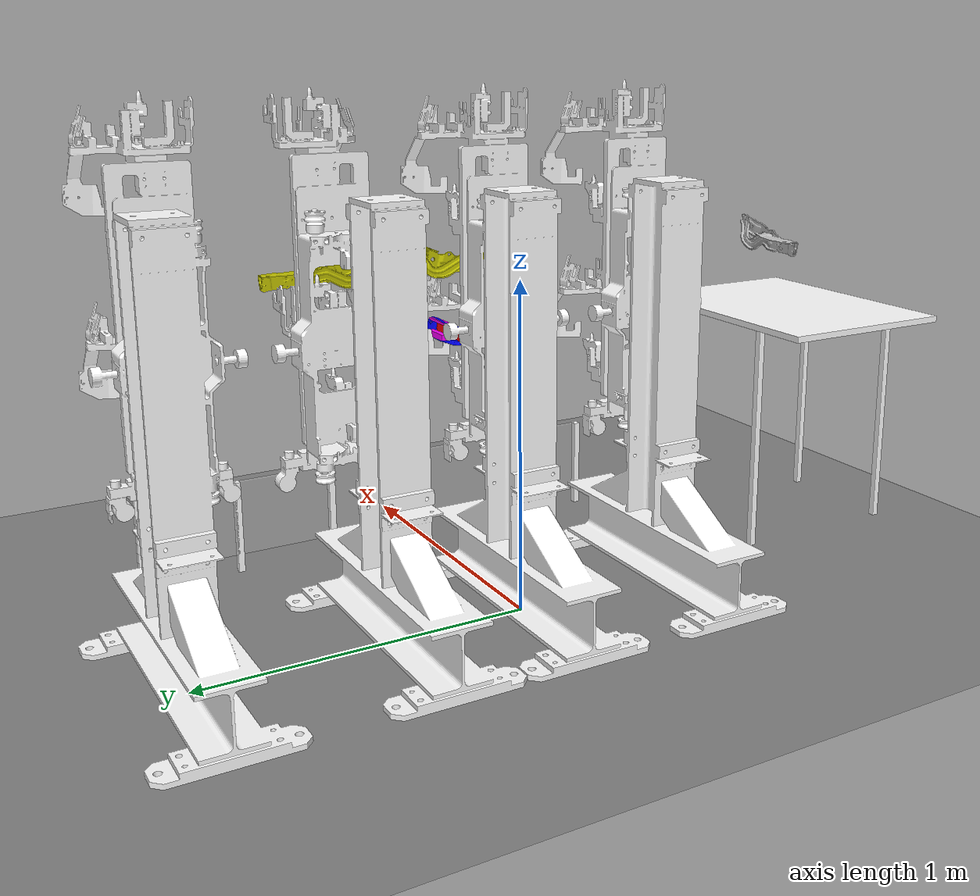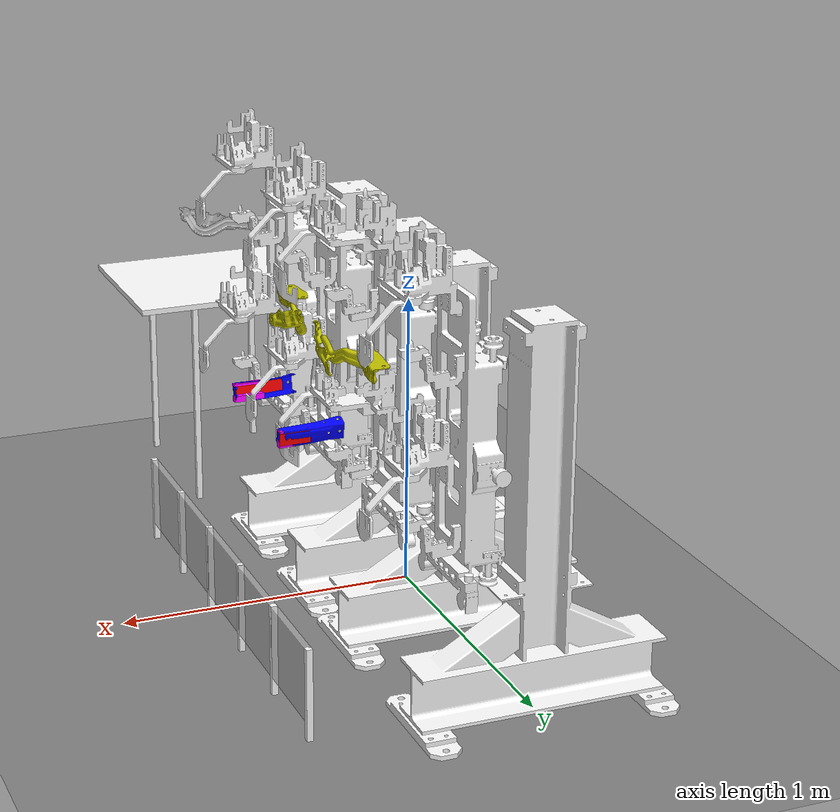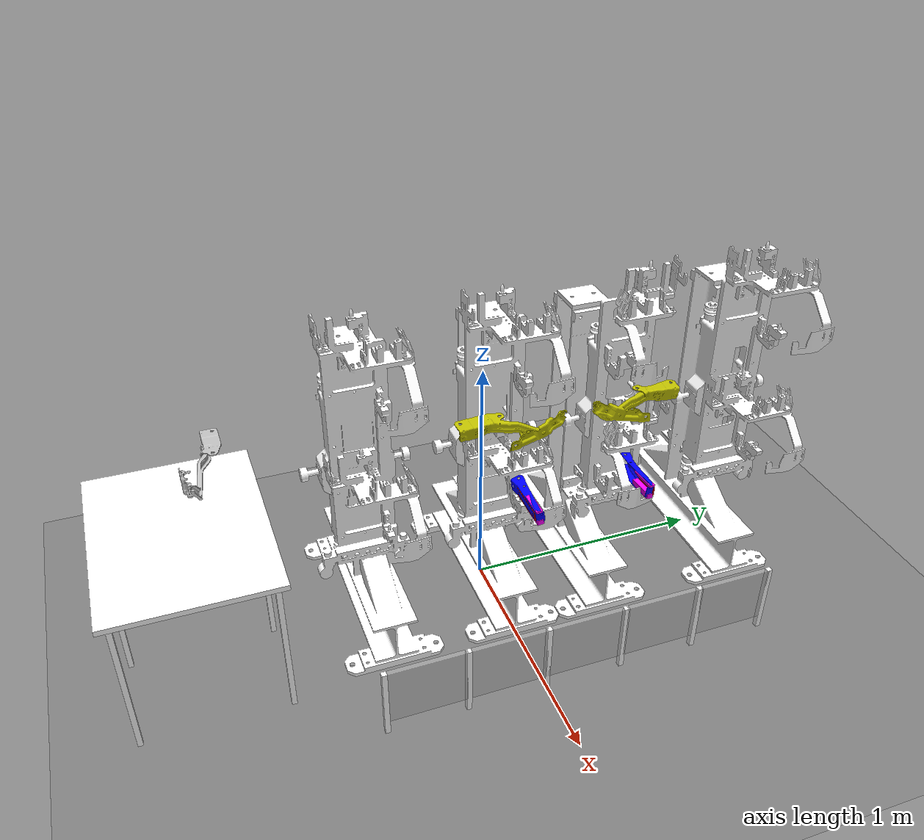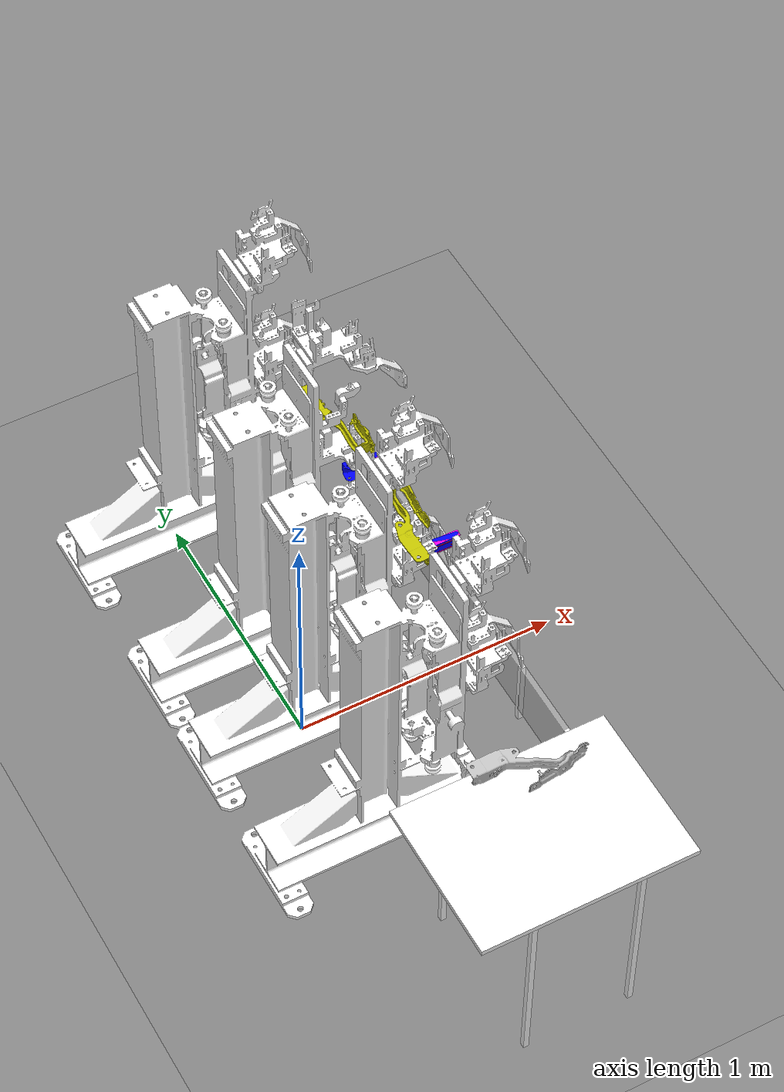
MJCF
<mujoco model="vccd_write">
    <compiler meshdir="../../meshes/wing" angle="radian" eulerseq="zyx"/>
    <asset>
        <texture type="2d" name="groundplane" builtin="checker" mark="edge" rgb1="0.5 0.5 0.5" rgb2="0.5 0.5 0.5"
                markrgb="0.3 0.3 0.3" width="300" height="300"/>
        <material name="groundplane" texture="groundplane" texuniform="true" texrepeat="2 2"/>
        <material name="red_light" rgba="1.0 0.0 0.0 1.0" emission="1.0" />
        <material name="green_light" rgba="0.0 1.0 0.0 1.0" emission="1.0"/>
        <material name="yellow_light" rgba="1.0 1.0 0.0 1.0" emission="1.0" />
        <mesh name="wing_board" file="yiziban.stl" scale="0.001 0.001 0.001"/>
        <mesh name="wing_board_mirror" file="yiziban_mirror.stl" scale="0.001 0.001 0.001"/>
        <mesh name="rack" file="jiazi.stl" scale="0.001 0.001 0.001"/>
        <mesh name="rack_mirror" file="zhijia_mirror.stl" scale="0.001 0.001 0.001"/>
        <mesh name="cy" file="cy.stl" scale="0.001 0.001 0.001"/>
        <mesh name="xiaode" file="xiaode.stl" scale="0.001 0.001 0.001"/>
        <mesh name="xiaode_mirror" file="xiaode_mirror.stl" scale="0.001 0.001 0.001"/>
        <mesh name="cy_bottom" file="cy_bottom.stl" scale="0.001 0.001 0.001"/>

    </asset>
    <visual>
        <headlight diffuse="1.2 1.2 1.2" ambient="0.3 0.3 0.3" specular="0 0 0"/>
        <rgba haze="0.15 0.25 0.35 1"/>
        <global azimuth="90" elevation="-20"/>
        <quality shadowsize="8192"/>
    </visual>
    <worldbody>
        <light pos="2.058333333 1.275 3" dir="0 0 -1" directional="false"   diffuse=".2 .2 .2"/>
        <light pos="-2.058333333 1.275 3" dir="0 0 -1" directional="false"  diffuse=".2 .2 .2"/>
        <light pos="2.058333333 -1.275 3" dir="0 0 -1" directional="false"  diffuse=".2 .2 .2"/>
        <light pos="-2.058333333 -1.275 3" dir="0 0 -1" directional="false" diffuse=".2 .2 .2"/>
        <light pos="-.225 1.5 3" dir="0 0 -1" directional="false"           diffuse=".2 .2 .2"/>
        <geom name="ground" pos="0 0 0" size="1.98 1.79 0.005" type="plane" material="groundplane" condim="1"/>

        <body name="wing_board" pos="0.25 -1.1 1" euler="0 0 0">
            <joint type="free"/>
            <geom type="mesh" mesh="wing_board" rgba="0.75 0.75 0.75 1"/>

        </body>

        <body name="wing_board_test" pos="0.397 -0.035 1" euler="1.63 0 0.05">
            <joint type="free"/>
            <geom type="mesh" mesh="wing_board" contype="0" conaffinity="0" rgba="0.75 0.75 0 1"/>
            <geom type="box" pos="-0.02 -0.055 -0.0347" size="0.022 0.0059 0.017" rgba="1 0 0 0" friction="0.5 0.0 0.0"/>
            <geom type="box" pos="-0.16 0.04 -0.0245" size="0.022 0.0059 0.01" euler="0 -0.07 0" rgba="1 0 0 0" friction="0.5 0.0 0.0"/>
            <geom type="box" pos="0.09 -0.0555 -0.009" size="0.022 0.005 0.017" euler="0 -0.32 0" rgba="1 0 0 0" friction="0.5 0.0 0.0"/>
            <geom type="box" pos="0.03 -0.052 -0.033" size="0.022 0.005 0.009" euler="0 -0.22 0" rgba="1 0 0 0" friction="0.5 0.0 0.0"/>
            <geom type="box" pos="0.105 -0.013 -0.041" size="0.022 0.006 0.01" euler="-0.05 -0.32 0" rgba="1 0 0 0" friction="0.5 0.0 0.0"/>
            <geom type="box" pos="-0.17 0.065 0.013" size="0.022 0.025 0.0017" euler="0 -0.05 0" rgba="1 0 0 0" friction="0.5 0.0 0.0"/>
            <geom type="cylinder" pos="-0.033 0.065 0.02" size="0.001 0.002" rgba="1 0 1 0" />
            <geom type="cylinder" pos="-0.039 0.05758 0.02" size="0.001 0.002" rgba="1 0 1 0"/>
            <geom type="cylinder" pos="-0.028 0.064 0.02" size="0.001 0.002" rgba="1 0 1 0" />
            <geom type="cylinder" pos="-0.037 0.0525 0.02" size="0.001 0.002" rgba="1 0 1 0" />
            <geom type="cylinder" pos="-0.037 0.063 0.02" size="0.001 0.002" rgba="1 0 1 0" />
            <geom type="cylinder" pos="-0.038 0.0614 0.02" size="0.001 0.002" rgba="1 0 1 0"/>
            <geom type="cylinder" pos="-0.0388 0.05958 0.02" size="0.001 0.002" rgba="1 0 1 0" />
            <geom type="cylinder" pos="-0.0388 0.0555 0.02" size="0.001 0.002" rgba="1 0 1 0"/>
            <geom type="cylinder" pos="-0.038 0.0537 0.02" size="0.001 0.002" rgba="1 0 1 0"/>
            <geom type="cylinder" pos="-0.0355 0.0515 0.02" size="0.001 0.002" rgba="1 0 1 0"/>
            <geom type="cylinder" pos="-0.0338 0.0508 0.02" size="0.001 0.002" rgba="1 0 1 0"/>
            <geom type="cylinder" pos="-0.0317 0.0503 0.02" size="0.001 0.002" rgba="1 0 1 0" />
            <geom type="cylinder" pos="-0.0297 0.05055 0.02" size="0.001 0.002" rgba="1 0 1 0"/>
            <geom type="cylinder" pos="-0.0278 0.0512 0.02" size="0.001 0.002" rgba="1 0 1 0"/>
            <geom type="cylinder" pos="-0.0262 0.0526 0.02" size="0.001 0.002" rgba="1 0 1 0"/>
            <geom type="cylinder" pos="-0.0252 0.05385 0.02" size="0.001 0.002" rgba="1 0 1 0"/>
            <geom type="cylinder" pos="-0.0248 0.0558 0.02" size="0.001 0.002" rgba="1 0 1 0"/>
            <geom type="cylinder" pos="-0.0243 0.057 0.02" size="0.001 0.002" rgba="1 0 1 0"/>
            <geom type="cylinder" pos="-0.0245 0.0585 0.02" size="0.001 0.002" rgba="1 0 1 0"/>
            <geom type="cylinder" pos="-0.0247 0.06 0.02" size="0.001 0.002" rgba="1 0 1 0"/>
            <geom type="cylinder" pos="-0.0255 0.0615 0.02" size="0.001 0.002" rgba="1 0 1 0"/>
            <geom type="cylinder" pos="-0.0267 0.0628 0.02" size="0.001 0.002" rgba="1 0 1 0"/>
            <geom type="cylinder" pos="-0.0298 0.0648 0.02" size="0.001 0.002" rgba="1 0 1 0"/>
            <geom type="cylinder" pos="-0.031 0.065 0.02" size="0.001 0.002" rgba="1 0 1 0"/>
            <geom type="cylinder" pos="-0.035 0.0642 0.02" size="0.001 0.002" rgba="1 0 1 0"/>
        </body>

        <body name="wing_board_test_mirror" pos="0.394 0.435 1" euler="1.48 0 0.01">
            <joint type="free"/>
            <geom type="mesh" mesh="wing_board_mirror" contype="0" conaffinity="0" rgba="0.75 0.75 0 1"/>
            <geom type="box" pos="0.02 -0.0535 -0.034" size="0.022 0.0059 0.017" euler="0 0.07 0" rgba="1 0 0 0" friction="0.5 0.0 0.0"/>
            <geom type="box" pos="0.16 0.042 -0.0245" size="0.022 0.0059 0.01" euler="0 0.07 0" rgba="1 0 0 0" friction="0.5 0.0 0.0"/>
            <geom type="box" pos="-0.08 -0.055 -0.008" size="0.022 0.005 0.017" euler="0 0.32 0" rgba="1 0 0 0" friction="0.5 0.0 0.0"/>
            <geom type="box" pos="-0.03 -0.05 -0.033" size="0.022 0.005 0.009" euler="0 0.22 0" rgba="1 0 0 0" friction="0.5 0.0 0.0"/>
            <geom type="box" pos="-0.105 -0.013 -0.041" size="0.022 0.006 0.01" euler="0.05 0.32 0" rgba="1 0 0 0" friction="0.5 0.0 0.0"/>
            <geom type="box" pos="0.16 0.065 0.013" size="0.022 0.025 0.0017" euler="0 0.05 0" rgba="1 0 0 0" friction="0.5 0.0 0.0"/>
            <body name="hole" pos="0.0636 0 0.002">
                <geom type="cylinder" pos="-0.033 0.065 0.02" size="0.001 0.002" rgba="1 0 1 0" />
                <geom type="cylinder" pos="-0.039 0.05758 0.02" size="0.001 0.002" rgba="1 0 1 0"/>
                <geom type="cylinder" pos="-0.028 0.064 0.02" size="0.001 0.002" rgba="1 0 1 0" />
                <geom type="cylinder" pos="-0.037 0.0525 0.02" size="0.001 0.002" rgba="1 0 1 0" />
                <geom type="cylinder" pos="-0.037 0.063 0.02" size="0.001 0.002" rgba="1 0 1 0" />
                <geom type="cylinder" pos="-0.038 0.0614 0.02" size="0.001 0.002" rgba="1 0 1 0"/>
                <geom type="cylinder" pos="-0.0388 0.05958 0.02" size="0.001 0.002" rgba="1 0 1 0" />
                <geom type="cylinder" pos="-0.0388 0.0555 0.02" size="0.001 0.002" rgba="1 0 1 0"/>
                <geom type="cylinder" pos="-0.038 0.0537 0.02" size="0.001 0.002" rgba="1 0 1 0"/>
                <geom type="cylinder" pos="-0.0355 0.0515 0.02" size="0.001 0.002" rgba="1 0 1 0"/>
                <geom type="cylinder" pos="-0.0338 0.0508 0.02" size="0.001 0.002" rgba="1 0 1 0"/>
                <geom type="cylinder" pos="-0.0317 0.0503 0.02" size="0.001 0.002" rgba="1 0 1 0" />
                <geom type="cylinder" pos="-0.0297 0.05055 0.02" size="0.001 0.002" rgba="1 0 1 0"/>
                <geom type="cylinder" pos="-0.0278 0.0512 0.02" size="0.001 0.002" rgba="1 0 1 0"/>
                <geom type="cylinder" pos="-0.0262 0.0526 0.02" size="0.001 0.002" rgba="1 0 1 0"/>
                <geom type="cylinder" pos="-0.0252 0.05385 0.02" size="0.001 0.002" rgba="1 0 1 0"/>
                <geom type="cylinder" pos="-0.0248 0.0558 0.02" size="0.001 0.002" rgba="1 0 1 0"/>
                <geom type="cylinder" pos="-0.0243 0.057 0.02" size="0.001 0.002" rgba="1 0 1 0"/>
                <geom type="cylinder" pos="-0.0245 0.0585 0.02" size="0.001 0.002" rgba="1 0 1 0"/>
                <geom type="cylinder" pos="-0.0247 0.06 0.02" size="0.001 0.002" rgba="1 0 1 0"/>
                <geom type="cylinder" pos="-0.0255 0.0615 0.02" size="0.001 0.002" rgba="1 0 1 0"/>
                <geom type="cylinder" pos="-0.0267 0.0628 0.02" size="0.001 0.002" rgba="1 0 1 0"/>
                <geom type="cylinder" pos="-0.0298 0.0648 0.02" size="0.001 0.002" rgba="1 0 1 0"/>
                <geom type="cylinder" pos="-0.031 0.065 0.02" size="0.001 0.002" rgba="1 0 1 0"/>
                <geom type="cylinder" pos="-0.035 0.0642 0.02" size="0.001 0.002" rgba="1 0 1 0"/>
            </body>
        </body>

        <body name="wing_rack" pos="0 0 0" euler="1.57 0 1.57">
            <geom type="mesh" mesh="rack" contype="0" conaffinity="0" pos="-0.5 0 0"  rgba="1 1 1 1"/>
            <geom type="mesh" mesh="rack" contype="0" conaffinity="0" pos="0 0 0" rgba="1 1 1 1"/>
            <geom type="mesh" mesh="rack" contype="0" conaffinity="0" pos="1 0 0"  rgba="1 1 1 1"/>
            <geom type="box" pos="-0.057 0.925 0.46" size="0.003 0.02 0.0022" rgba="1 0 1 0" friction="0.5 0.0 0.0"/>
            <geom type="box" pos="-0.057 0.925 0.442" size="0.003 0.02 0.0022" rgba="1 0 1 0" friction="0.5 0.0 0.0"/>
            <geom type="box" pos="-0.059 0.907 0.45" size="0.01 0.002 0.018" rgba="1 0 1 0" friction="0.5 0.0 0.0"/>
            <geom type="box" pos="-0.19 0.93 0.36" size="0.01 0.002 0.018" rgba="1 0 1 0" friction="0.5 0.0 0.0"/>
            <geom type="box" pos="-0.185 0.95 0.338" size="0.003 0.02 0.0022" rgba="1 0 1 0" friction="0.5 0.0 0.0"/>
            <geom type="box" pos="-0.185 0.94 0.375" size="0.003 0.01 0.0022" rgba="1 0 1 0" friction="0.5 0.0 0.0"/>
            <geom type="box" pos="0.057 0.9275 0.442" size="0.022 0.008 0.001" euler="0.21 0 1.57" rgba="1 0 1 0" friction="0.5 0.0 0.0"/>
            <geom type="box" pos="-0.02 0.913 0.442" size="0.022 0.008 0.001" euler="0.19 0 1.57" rgba="1 0 1 0" friction="0.5 0.0 0.0"/>
            <geom type="box" pos="0.057 0.898 0.4005" size="0.022 0.008 0.001" euler="0.21 0 1.57" rgba="1 0 1 0" friction="0.5 0.0 0.0"/>
            <geom type="box" pos="0.064 0.943 0.452" size="0.003 0.025 0.0022" euler="0.32 0 0.02" rgba="1 0 1 0" friction="0.5 0.0 0.0"/>
            <geom type="box" pos="0.064 0.935 0.433" size="0.003 0.01 0.0022" euler="0.32 0 0.02" rgba="1 0 1 0" friction="0.5 0.0 0.0"/>
            <geom type="box" pos="0.064 0.917 0.41" size="0.003 0.025 0.0022" euler="0.32 0 0.02" rgba="1 0 1 0" friction="0.5 0.0 0.0"/>
            <geom type="box" pos="0.064 0.917 0.391" size="0.003 0.025 0.0022" euler="0.32 0 0.02" rgba="1 0 1 0" friction="0.5 0.0 0.0"/>
            <geom type="box" pos="-0.19 0.975 0.323" size="0.01 0.002 0.018" rgba="1 0 1 0" friction="0.5 0.0 0.0"/>
            <geom type="mesh" mesh="cy" pos="-0.077 0.977 0.346" euler="0 0 -1.57" rgba="0 0 1 0"/>
            <geom type="box" pos="-0.014 0.684 0.555" euler="0.06 0 0" size="0.012 0.001 0.05" rgba="1 1 1 0" friction="0.5 0.0 0.0"/>
            <geom type="box" pos="0 0.684 0.555" euler="1.57 0 0" size="0.01 0.001 0.008" rgba="1 1 1 0" friction="0.5 0.0 0.0"/>
            <geom type="box" pos="-0.029 0.693 0.555" euler="1.6 0 0" size="0.01 0.001 0.008" rgba="1 1 1 0" friction="0.5 0.0 0.0"/>
            <geom type="box" pos="-0.005 0.6822 0.405" euler="0 0 0.025" size="0.012 0.001 0.03" rgba="1 1 1 0" friction="0.5 0.0 0.0"/>
            <geom type="mesh" mesh="cy_bottom" pos="-0.01 0.682 0.413" euler="0 0 -1.57" rgba="0 0 1 0"/>

            <geom type="mesh" mesh="rack_mirror" contype="0" conaffinity="0" pos="0.4 0 0"  rgba="1 1 1 1"/>
            <body name="rack_collision_mirror" pos="0.516 0 0">
                <geom type="box" pos="-0.057 0.925 0.46" size="0.003 0.02 0.0022" rgba="1 0 1 0" friction="0.5 0.0 0.0"/>
                <geom type="box" pos="-0.057 0.925 0.442" size="0.003 0.02 0.0022" rgba="1 0 1 0" friction="0.5 0.0 0.0"/>
                <geom type="box" pos="-0.059 0.907 0.45" size="0.01 0.002 0.018" rgba="1 0 1 0" friction="0.5 0.0 0.0"/>
                <geom type="box" pos="0.07 0.93 0.36" size="0.01 0.002 0.018" rgba="1 0 1 0" friction="0.5 0.0 0.0"/>
                <geom type="box" pos="0.07 0.95 0.338" size="0.003 0.02 0.0022" rgba="1 0 1 0" friction="0.5 0.0 0.0"/>
                <geom type="box" pos="0.07 0.94 0.375" size="0.003 0.01 0.0022" rgba="1 0 1 0" friction="0.5 0.0 0.0"/>
                <geom type="box" pos="-0.175 0.9275 0.442" size="0.022 0.008 0.001" euler="-0.21 0 -1.57" rgba="1 0 1 0" friction="0.5 0.0 0.0"/>
                <geom type="box" pos="-0.1 0.913 0.442" size="0.022 0.008 0.001" euler="-0.19 0 -1.57" rgba="1 0 1 0" friction="0.5 0.0 0.0"/>
                <geom type="box" pos="-0.185 0.899 0.4005" size="0.022 0.008 0.001" euler="-0.21 0 -1.57" rgba="1 0 1 0" friction="0.5 0.0 0.0"/>
                <geom type="box" pos="-0.175 0.943 0.452" size="0.003 0.025 0.0022" euler="-0.32 0 0" rgba="1 0 1 0" friction="0.5 0.0 0.0"/>
                <geom type="box" pos="-0.175 0.935 0.433" size="0.003 0.01 0.0022" euler="-0.32 0 0.02" rgba="1 0 1 0" friction="0.5 0.0 0.0"/>
                <geom type="box" pos="-0.185 0.917 0.41" size="0.003 0.025 0.0022" euler="-0.32 0 -0.02" rgba="1 0 1 0" friction="0.5 0.0 0.0"/>
                <geom type="box" pos="-0.185 0.917 0.391" size="0.003 0.025 0.0022" euler="-0.32 0 -0.02" rgba="1 0 1 0" friction="0.5 0.0 0.0"/>
                <geom type="box" pos="0.07 0.975 0.323" size="0.01 0.002 0.018" rgba="1 0 1 0" friction="0.5 0.0 0.0"/>
                <geom type="mesh" mesh="cy" pos="-0.052 0.977 0.346" euler="0 0 -1.57" rgba="0 0 1 0"/>
                <geom type="box" pos="-0.1 0.683 0.555" euler="-0.06 0 0" size="0.012 0.001 0.05" rgba="1 1 0 0" friction="0.5 0.0 0.0"/>
                <geom type="box" pos="-0.084 0.69 0.555" euler="1.5 0 0" size="0.01 0.001 0.008" rgba="1 1 0 0" friction="0.5 0.0 0.0"/>
                <geom type="box" pos="-0.115 0.693 0.555" euler="1.6 0 0" size="0.01 0.001 0.008" rgba="1 1 0 0" friction="0.5 0.0 0.0"/>
                <geom type="box" pos="-0.112 0.6822 0.405" euler="0 0 0.025" size="0.012 0.001 0.03" rgba="1 1 0 0" friction="0.5 0.0 0.0"/>
                <geom type="mesh" mesh="cy_bottom" pos="-0.116 0.682 0.413" euler="0 0 -1.57" rgba="0 0 1 0"/>
            </body>
        </body>

        <body name="xiade" pos="0.5315 -0.02 0.75" euler="1.57 -0.13 1.57">
            <joint type="free"/>
            <geom type="mesh" mesh="xiaode" pos="0 0 0" contype="0" conaffinity="0" euler="0 0 0" rgba="0 0 1 1"/>
            <geom type="box" pos="0.005 -0.023 0.02" size="0.012 0.01 0.05" rgba="1 0 1 1" friction="0.5 0.0 0.0"/>
            <geom type="box" pos="0.005 0.023 0.02" size="0.012 0.004 0.05" rgba="1 0 1 1" friction="0.5 0.0 0.0"/>
            <geom type="cylinder" pos="0.0115 -0.023 -0.1198" euler="0 0 1.57" size="0.001 0.002" rgba="1 0 1 0" />
            <geom type="cylinder" pos="0.01 -0.023 -0.1207" euler="0 0 1.57" size="0.001 0.002" rgba="1 0 1 0" />
            <geom type="cylinder" pos="0.0088 -0.023 -0.1219" euler="0 0 1.57" size="0.001 0.002" rgba="1 0 1 0" />
            <geom type="cylinder" pos="0.0078 -0.023 -0.1235" euler="0 0 1.57" size="0.001 0.002" rgba="1 0 1 0" />
            <geom type="cylinder" pos="0.0074 -0.023 -0.1255" euler="0 0 1.57" size="0.001 0.002" rgba="1 0 1 0" />
            <geom type="cylinder" pos="0.0078 -0.023 -0.1275" euler="0 0 1.57" size="0.001 0.002" rgba="1 0 1 0" />
            <geom type="cylinder" pos="0.0088 -0.023 -0.1294" euler="0 0 1.57" size="0.001 0.002" rgba="1 0 1 0" />
            <geom type="cylinder" pos="0.0102 -0.023 -0.131" euler="0 0 1.57" size="0.001 0.002" rgba="1 0 1 0" />
            <geom type="cylinder" pos="0.012 -0.023 -0.1318" euler="0 0 1.57" size="0.001 0.002" rgba="1 0 1 0" />
            <geom type="cylinder" pos="0.014 -0.023 -0.1321" euler="0 0 1.57" size="0.001 0.002" rgba="1 0 1 0" />
            <geom type="cylinder" pos="0.016 -0.023 -0.1317" euler="0 0 1.57" size="0.001 0.002" rgba="1 0 1 0" />
            <geom type="cylinder" pos="0.0177 -0.023 -0.1308" euler="0 0 1.57" size="0.001 0.002" rgba="1 0 1 0" />
            <geom type="cylinder" pos="0.0191 -0.023 -0.1295" euler="0 0 1.57" size="0.001 0.002" rgba="1 0 1 0" />
            <geom type="cylinder" pos="0.0198 -0.023 -0.1279" euler="0 0 1.57" size="0.001 0.002" rgba="1 0 1 0" />
            <geom type="cylinder" pos="0.0202 -0.023 -0.126" euler="0 0 1.57" size="0.001 0.002" rgba="1 0 1 0" />
            <geom type="cylinder" pos="0.0198 -0.023 -0.124" euler="0 0 1.57" size="0.001 0.002" rgba="1 0 1 0" />
            <geom type="cylinder" pos="0.0188 -0.023 -0.122" euler="0 0 1.57" size="0.001 0.002" rgba="1 0 1 0" />
            <geom type="cylinder" pos="0.0173 -0.023 -0.1206" euler="0 0 1.57" size="0.001 0.002" rgba="1 0 1 0" />
            <geom type="cylinder" pos="0.0159 -0.023 -0.1198" euler="0 0 1.57" size="0.001 0.002" rgba="1 0 1 0" />
            <geom type="cylinder" pos="0.0145 -0.023 -0.1195" euler="0 0 1.57" size="0.001 0.002" rgba="1 0 1 0" />
            <geom type="cylinder" pos="0.013 -0.023 -0.1193" euler="0 0 1.57" size="0.001 0.002" rgba="1 0 1 0" />
            <geom type="box" pos="-0.0088 0 -0.02" size="0.0017 0.02 0.08" rgba="1 0 0 1" friction="0.5 0.0 0.0"/>
        </body>

        <body name="xiade_mirror" pos="0.5315 0.42 0.75" euler="1.57 0.1 1.57">
            <joint type="free"/>
            <geom type="mesh" mesh="xiaode_mirror" pos="0 0 0" contype="0" conaffinity="0" euler="0 0 0" rgba="0 0 1 1"/>
            <geom type="box" pos="-0.005 -0.0215 0.02" euler="0.05 0.05 0" size="0.0115 0.01 0.05" rgba="1 0 1 1" friction="0.5 0.0 0.0"/>
            <geom type="box" pos="-0.005 0.0215 0.02" euler="0.05 0.05 0" size="0.0115 0.004 0.05" rgba="1 0 1 1" friction="0.5 0.0 0.0"/>
            <body name="hole_xiaode" pos="-0.0275 -0.002 0">
                <geom type="cylinder" pos="0.0115 -0.023 -0.1198" euler="0 0 1.57" size="0.001 0.002" rgba="1 0 1 0" />
                <geom type="cylinder" pos="0.01 -0.023 -0.1207" euler="0 0 1.57" size="0.001 0.002" rgba="1 0 1 0" />
                <geom type="cylinder" pos="0.0088 -0.023 -0.1219" euler="0 0 1.57" size="0.001 0.002" rgba="1 0 1 0" />
                <geom type="cylinder" pos="0.0078 -0.023 -0.1235" euler="0 0 1.57" size="0.001 0.002" rgba="1 0 1 0" />
                <geom type="cylinder" pos="0.0074 -0.023 -0.1255" euler="0 0 1.57" size="0.001 0.002" rgba="1 0 1 0" />
                <geom type="cylinder" pos="0.0078 -0.023 -0.1275" euler="0 0 1.57" size="0.001 0.002" rgba="1 0 1 0" />
                <geom type="cylinder" pos="0.0088 -0.023 -0.1294" euler="0 0 1.57" size="0.001 0.002" rgba="1 0 1 0" />
                <geom type="cylinder" pos="0.0102 -0.023 -0.131" euler="0 0 1.57" size="0.001 0.002" rgba="1 0 1 0" />
                <geom type="cylinder" pos="0.012 -0.023 -0.1318" euler="0 0 1.57" size="0.001 0.002" rgba="1 0 1 0" />
                <geom type="cylinder" pos="0.014 -0.023 -0.1321" euler="0 0 1.57" size="0.001 0.002" rgba="1 0 1 0" />
                <geom type="cylinder" pos="0.016 -0.023 -0.1317" euler="0 0 1.57" size="0.001 0.002" rgba="1 0 1 0" />
                <geom type="cylinder" pos="0.0177 -0.023 -0.1308" euler="0 0 1.57" size="0.001 0.002" rgba="1 0 1 0" />
                <geom type="cylinder" pos="0.0191 -0.023 -0.1295" euler="0 0 1.57" size="0.001 0.002" rgba="1 0 1 0" />
                <geom type="cylinder" pos="0.0198 -0.023 -0.1279" euler="0 0 1.57" size="0.001 0.002" rgba="1 0 1 0" />
                <geom type="cylinder" pos="0.0202 -0.023 -0.126" euler="0 0 1.57" size="0.001 0.002" rgba="1 0 1 0" />
                <geom type="cylinder" pos="0.0198 -0.023 -0.124" euler="0 0 1.57" size="0.001 0.002" rgba="1 0 1 0" />
                <geom type="cylinder" pos="0.0188 -0.023 -0.122" euler="0 0 1.57" size="0.001 0.002" rgba="1 0 1 0" />
                <geom type="cylinder" pos="0.0173 -0.023 -0.1206" euler="0 0 1.57" size="0.001 0.002" rgba="1 0 1 0" />
                <geom type="cylinder" pos="0.0159 -0.023 -0.1198" euler="0 0 1.57" size="0.001 0.002" rgba="1 0 1 0" />
                <geom type="cylinder" pos="0.0145 -0.023 -0.1195" euler="0 0 1.57" size="0.001 0.002" rgba="1 0 1 0" />
                <geom type="cylinder" pos="0.013 -0.023 -0.1193" euler="0 0 1.57" size="0.001 0.002" rgba="1 0 1 0" />
                <geom type="box" pos="0.037 0 0.02" euler="0.05 0 0" size="0.0017 0.02 0.05" rgba="1 0 0 1" friction="0.5 0.0 0.0"/>
            </body>
        </body>

        <body name="fence" pos="0.7 0 0">
            <geom type="box" pos="0 -0.63 0.15" size="0.01 0.01 0.15" rgba="1 1 1 1"/>
            <geom type="box" pos="0 -0.47 0.18" size="0.01 0.15 0.12" rgba="0.75 0.75 0.75 0.5"/>
            <geom type="box" pos="0 -0.315 0.15" size="0.01 0.01 0.15" rgba="1 1 1 1"/>
            <geom type="box" pos="0 -0.155 0.18" size="0.01 0.15 0.12" rgba="0.75 0.75 0.75 0.5"/>
            <geom type="box" pos="0 0 0.15" size="0.01 0.01 0.15" rgba="1 1 1 1"/>
            <geom type="box" pos="0 0.155 0.18" size="0.01 0.15 0.12" rgba="0.75 0.75 0.75 0.5"/>
            <geom type="box" pos="0 0.315 0.15" size="0.01 0.01 0.15" rgba="1 1 1 1"/>
            <geom type="box" pos="0 0.47 0.18" size="0.01 0.15 0.12" rgba="0.75 0.75 0.75 0.5"/>
            <geom type="box" pos="0 0.63 0.15" size="0.01 0.01 0.15" rgba="1 1 1 1"/>
            <geom type="box" pos="0 0.785 0.18" size="0.01 0.15 0.12" rgba="0.75 0.75 0.75 0.5"/>
            <geom type="box" pos="0 0.94 0.15" size="0.01 0.01 0.15" rgba="1 1 1 1"/>
        </body>

        <body name="table" pos="0.25 -1.2 0" euler="1.57 0 0">
            <geom type="box" pos="0 0 0.75" size="0.3 0.4 0.01" rgba="1 1 1 1"/>
            <geom type="box" pos="0.28 0.2 0.375" size="0.01 0.01 0.375" rgba="1 1 1 1"/>
            <geom type="box" pos="-0.28 0.2 0.375" size="0.01 0.01 0.375" rgba="1 1 1 1"/>
            <geom type="box" pos="0.28 -0.2 0.375" size="0.01 0.01 0.375" rgba="1 1 1 1"/>
            <geom type="box" pos="-0.28 -0.2 0.375" size="0.01 0.01 0.375" rgba="1 1 1 1"/>
        </body>

    </worldbody>

</mujoco>
